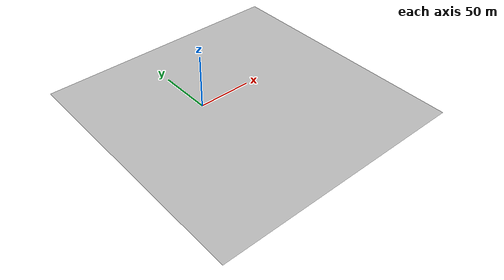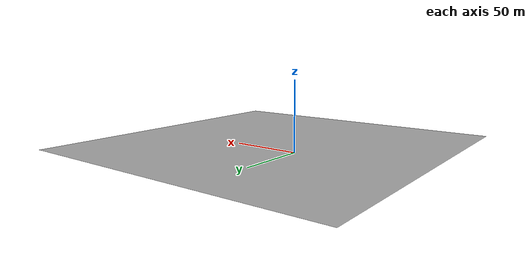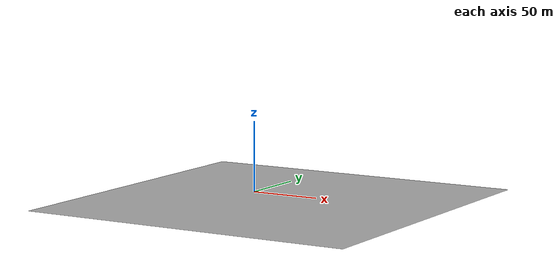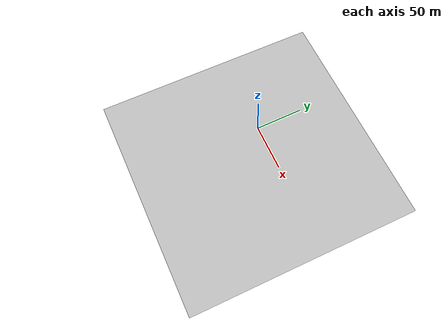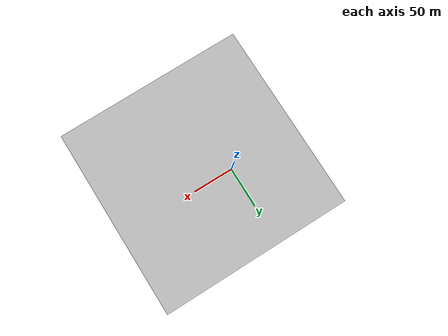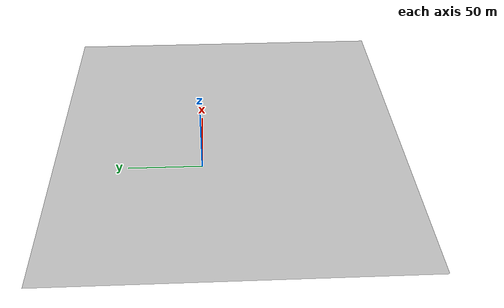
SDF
<?xml version="1.0" ?>
<sdf version="1.4">
    <model name="field_floor">
        <static>1</static>
        <link name="link_1">
            <!-- VISUAL COMPONENT (your existing visual) -->
            <visual name="visual">
                <pose>29.0 -19.5 0 0 0 0</pose>
                <geometry>
                    <mesh>
                        <uri>model://field_floor/meshes/field_floor.dae</uri>
                        <scale>4 4 1</scale>
                    </mesh>
                </geometry>
            </visual>

            <!-- ADD THIS COLLISION COMPONENT -->
            <collision name="collision">
                <pose>0 0 0 0 0 0</pose>
                <geometry>
                    <mesh>
                        <uri>model://field_floor/meshes/field_floor.dae</uri>
                        <scale>4 4 1</scale>
                    </mesh>
                </geometry>
                <surface>
                    <friction>
                        <ode>
                            <mu>1.0</mu>
                            <mu2>1.0</mu2>
                        </ode>
                    </friction>
                    <contact>
                        <ode>
                            <kp>1000000</kp>
                            <kd>1</kd>
                        </ode>
                    </contact>
                </surface>
            </collision>

            <!-- ADD INERTIAL PROPERTIES -->
            <inertial>
                <mass>1</mass>
                <inertia>
                    <ixx>1</ixx>
                    <iyy>1</iyy>
                    <izz>1</izz>
                    <ixy>0</ixy>
                    <ixz>0</ixz>
                    <iyz>0</iyz>
                </inertia>
            </inertial>
        </link>
    </model>
</sdf>
